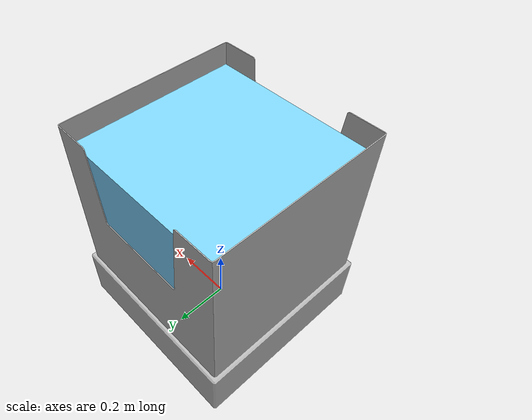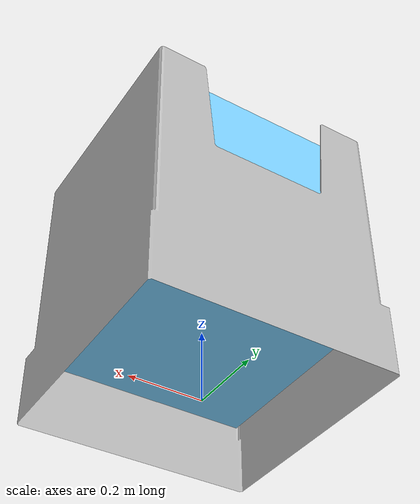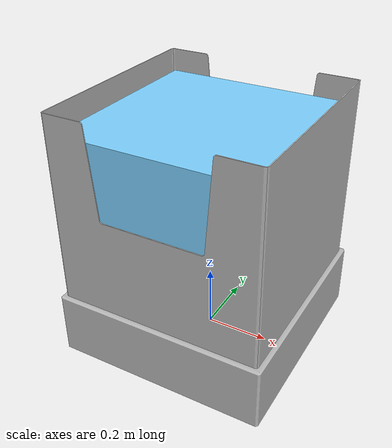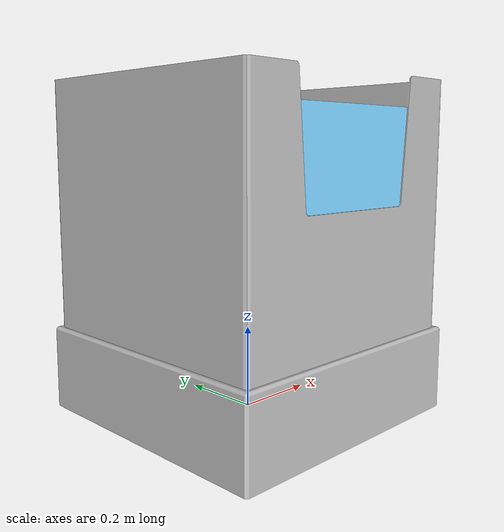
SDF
<?xml version="1.0" ?>
<sdf version="1.6">
  <model name="workcell_bin">
    <static>true</static>
    <link name="link">
      <visual name="visual">
        <geometry>
          <mesh>
            <uri>model://workcell_bin/meshes/bin.dae</uri>
          </mesh>
        </geometry>
      </visual>
      <collision name="center_collision">
        <pose>0 0 0.45 0 0 0</pose>
        <geometry>
          <box>
            <size>0.6 0.6 0.55</size>
          </box>
        </geometry>
      </collision>
      <visual name="center_visual">
        <pose>0 0 0.45 0 0 0</pose>
        <geometry>
          <box>
            <size>0.6 0.6 0.55</size>
          </box>
        </geometry>
        <material>
          <ambient>0.48627451 0.819607843 1 1</ambient>
          <diffuse>0.48627451 0.819607843 1 1</diffuse>
        </material>
      </visual>

      <collision name="base">
        <pose>0 0 0.100245 0 0 0</pose>
        <geometry>
          <box>
            <size>0.66836 0.66836 0.20049</size>
          </box>
        </geometry>
      </collision>

      <collision name="left_wall">
        <pose>-0.319 0 0.395445 0 0 0</pose>
        <geometry>
          <box>
            <size>0.003 0.63803 0.79089</size>
          </box>
        </geometry>
      </collision>

      <collision name="right_wall">
        <pose>0.319 0 0.395445 0 0 0</pose>
        <geometry>
          <box>
            <size>0.003 0.63803 0.79089</size>
          </box>
        </geometry>
      </collision>

      <collision name="front_left_wall">
        <pose>-0.25331 0.31899 0.395445 0 0 0</pose>
        <geometry>
          <box>
            <size>0.13437 0.003 0.79089</size>
          </box>
        </geometry>
      </collision>

      <collision name="front_mid_wall">
        <pose>0 0.31899 0.252845 0 0 0</pose>
        <geometry>
          <box>
            <size>0.37226 0.003 0.50569</size>
          </box>
        </geometry>
      </collision>

      <collision name="front_right_wall">
        <pose>0.25331 0.31899 0.395445 0 0 0</pose>
        <geometry>
          <box>
            <size>0.13437 0.003 0.79089</size>
          </box>
        </geometry>
      </collision>

      <collision name="back_left_wall">
        <pose>-0.25331 -0.31899 0.395445 0 0 0</pose>
        <geometry>
          <box>
            <size>0.13437 0.003 0.79089</size>
          </box>
        </geometry>
      </collision>

      <collision name="back_mid_wall">
        <pose>0 -0.31899 0.252845 0 0 0</pose>
        <geometry>
          <box>
            <size>0.37226 0.003 0.50569</size>
          </box>
        </geometry>
      </collision>

      <collision name="back_right_wall">
        <pose>0.25331 -0.31899 0.395445 0 0 0</pose>
        <geometry>
          <box>
            <size>0.13437 0.003 0.79089</size>
          </box>
        </geometry>
      </collision>
    </link>
  </model>
</sdf>
